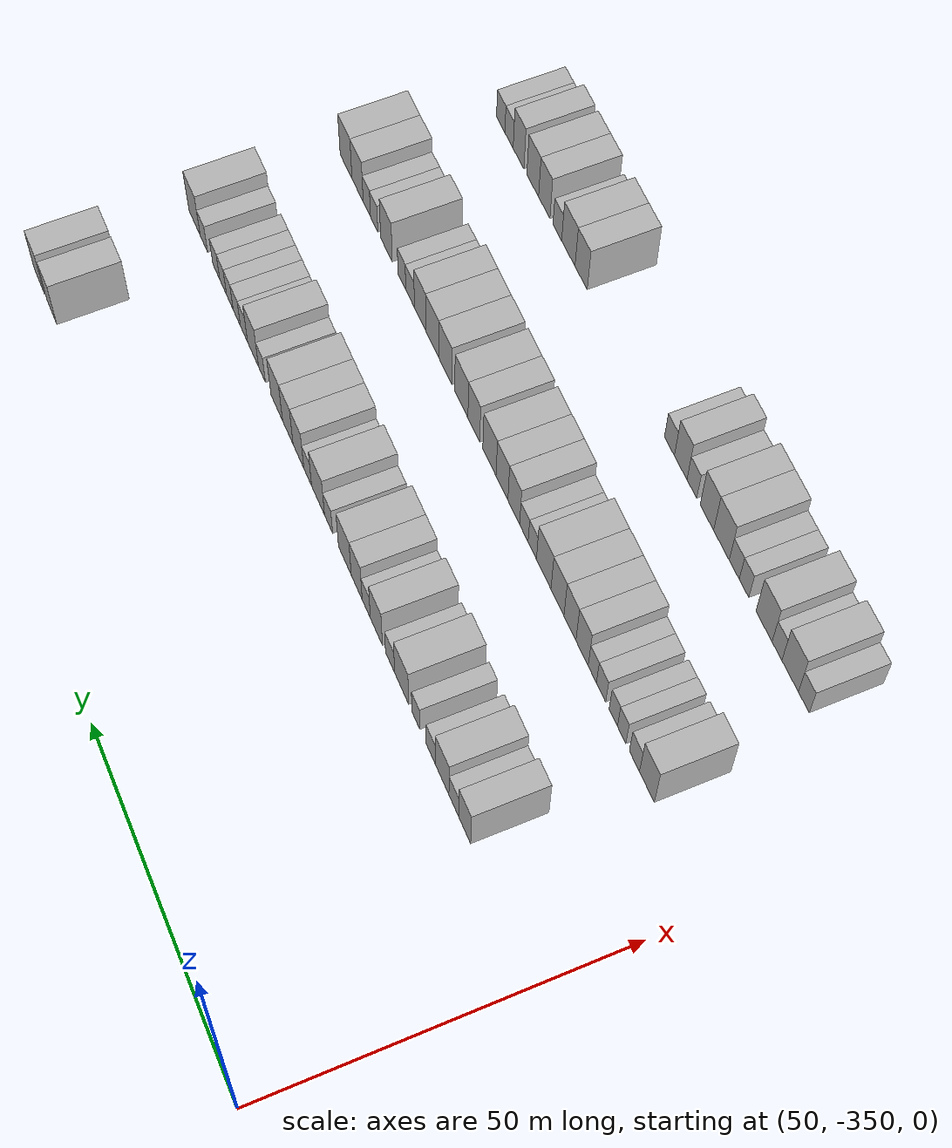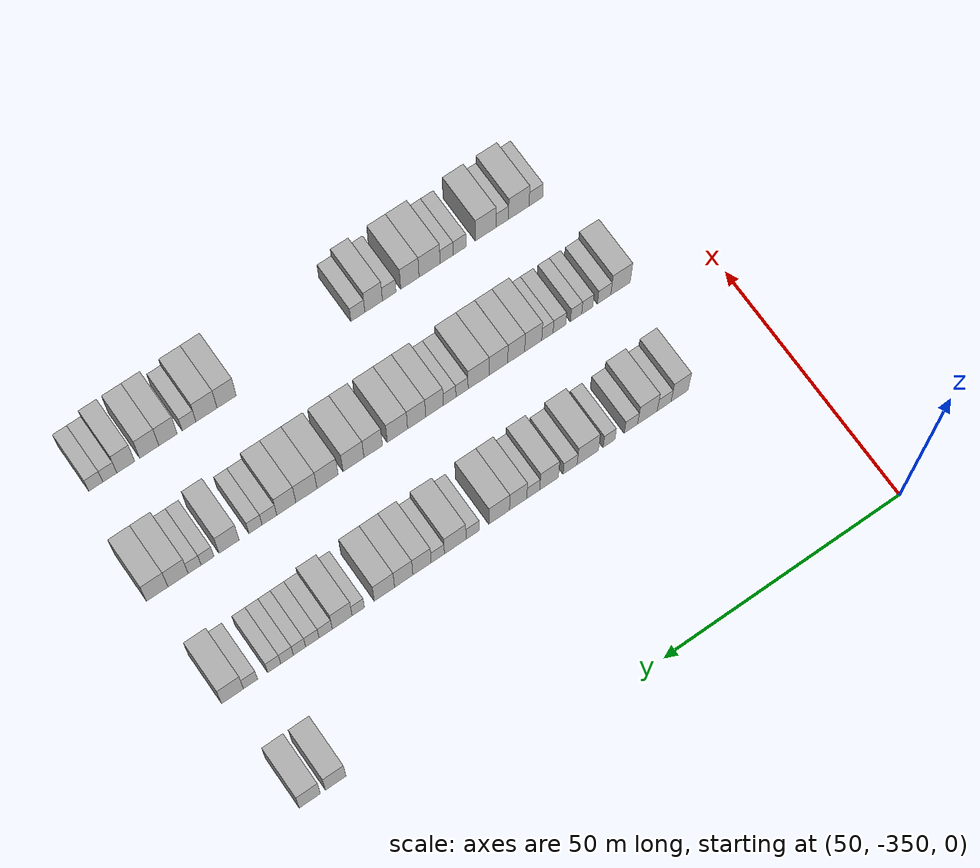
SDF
<sdf version="1.6">
 <world name="default">
  <model name="building_418">
   <static>1</static>
   <pose>69.0000 -243.1174 0 0.000000 0.000000 0.000000</pose>
   <link name="link">
    <pose>0 0 4.50 0 0 0</pose>
    <collision name="collision"><geometry><box><size>10.0000 4.0777 9.0000</size></box></geometry></collision>
    <visual name="visual">
     <cast_shadows>0</cast_shadows>
     <geometry><box><size>10.0000 4.0777 9.0000</size></box></geometry>
     <material>
      <script>
       <uri>model://HANNAS_wall/materials/scripts</uri>
       <uri>model://HANNAS_wall/materials/textures</uri>
       <name>vrc/HANNAS_wall</name>
      </script>
     </material>
    </visual>
   </link>
  </model>
  <model name="building_419">
   <static>1</static>
   <pose>69.0000 -237.9843 0 0.000000 0.000000 0.000000</pose>
   <link name="link">
    <pose>0 0 4.50 0 0 0</pose>
    <collision name="collision"><geometry><box><size>10.0000 4.1885 9.0000</size></box></geometry></collision>
    <visual name="visual">
     <cast_shadows>0</cast_shadows>
     <geometry><box><size>10.0000 4.1885 9.0000</size></box></geometry>
     <material>
      <script>
       <uri>model://HANNAS_wall/materials/scripts</uri>
       <uri>model://HANNAS_wall/materials/textures</uri>
       <name>vrc/HANNAS_wall</name>
      </script>
     </material>
    </visual>
   </link>
  </model>
  <model name="building_576">
   <static>1</static>
   <pose>91.0000 -329.6515 0 0.000000 0.000000 0.000000</pose>
   <link name="link">
    <pose>0 0 4.50 0 0 0</pose>
    <collision name="collision"><geometry><box><size>10.0000 3.6213 9.0000</size></box></geometry></collision>
    <visual name="visual">
     <cast_shadows>0</cast_shadows>
     <geometry><box><size>10.0000 3.6213 9.0000</size></box></geometry>
     <material>
      <script>
       <uri>model://HANNAS_wall/materials/scripts</uri>
       <uri>model://HANNAS_wall/materials/textures</uri>
       <name>vrc/HANNAS_wall</name>
      </script>
     </material>
    </visual>
   </link>
  </model>
  <model name="building_577">
   <static>1</static>
   <pose>91.0000 -326.3571 0 0.000000 0.000000 0.000000</pose>
   <link name="link">
    <pose>0 0 3.00 0 0 0</pose>
    <collision name="collision"><geometry><box><size>10.0000 2.9674 6.0000</size></box></geometry></collision>
    <visual name="visual">
     <cast_shadows>0</cast_shadows>
     <geometry><box><size>10.0000 2.9674 6.0000</size></box></geometry>
     <material>
      <script>
       <uri>model://HANNAS_wall/materials/scripts</uri>
       <uri>model://HANNAS_wall/materials/textures</uri>
       <name>vrc/HANNAS_wall</name>
      </script>
     </material>
    </visual>
   </link>
  </model>
  <model name="building_578">
   <static>1</static>
   <pose>91.0000 -322.7849 0 0.000000 0.000000 0.000000</pose>
   <link name="link">
    <pose>0 0 4.50 0 0 0</pose>
    <collision name="collision"><geometry><box><size>10.0000 4.1769 9.0000</size></box></geometry></collision>
    <visual name="visual">
     <cast_shadows>0</cast_shadows>
     <geometry><box><size>10.0000 4.1769 9.0000</size></box></geometry>
     <material>
      <script>
       <uri>model://HANNAS_wall/materials/scripts</uri>
       <uri>model://HANNAS_wall/materials/textures</uri>
       <name>vrc/HANNAS_wall</name>
      </script>
     </material>
    </visual>
   </link>
  </model>
  <model name="building_579">
   <static>1</static>
   <pose>91.0000 -319.2831 0 0.000000 0.000000 0.000000</pose>
   <link name="link">
    <pose>0 0 3.00 0 0 0</pose>
    <collision name="collision"><geometry><box><size>10.0000 2.8267 6.0000</size></box></geometry></collision>
    <visual name="visual">
     <cast_shadows>0</cast_shadows>
     <geometry><box><size>10.0000 2.8267 6.0000</size></box></geometry>
     <material>
      <script>
       <uri>model://HANNAS_wall/materials/scripts</uri>
       <uri>model://HANNAS_wall/materials/textures</uri>
       <name>vrc/HANNAS_wall</name>
      </script>
     </material>
    </visual>
   </link>
  </model>
  <model name="building_580">
   <static>1</static>
   <pose>91.0000 -314.6168 0 0.000000 0.000000 0.000000</pose>
   <link name="link">
    <pose>0 0 3.00 0 0 0</pose>
    <collision name="collision"><geometry><box><size>10.0000 2.5059 6.0000</size></box></geometry></collision>
    <visual name="visual">
     <cast_shadows>0</cast_shadows>
     <geometry><box><size>10.0000 2.5059 6.0000</size></box></geometry>
     <material>
      <script>
       <uri>model://HANNAS_wall/materials/scripts</uri>
       <uri>model://HANNAS_wall/materials/textures</uri>
       <name>vrc/HANNAS_wall</name>
      </script>
     </material>
    </visual>
   </link>
  </model>
  <model name="building_581">
   <static>1</static>
   <pose>91.0000 -310.1187 0 0.000000 0.000000 0.000000</pose>
   <link name="link">
    <pose>0 0 4.50 0 0 0</pose>
    <collision name="collision"><geometry><box><size>10.0000 4.4902 9.0000</size></box></geometry></collision>
    <visual name="visual">
     <cast_shadows>0</cast_shadows>
     <geometry><box><size>10.0000 4.4902 9.0000</size></box></geometry>
     <material>
      <script>
       <uri>model://HANNAS_wall/materials/scripts</uri>
       <uri>model://HANNAS_wall/materials/textures</uri>
       <name>vrc/HANNAS_wall</name>
      </script>
     </material>
    </visual>
   </link>
  </model>
  <model name="building_582">
   <static>1</static>
   <pose>91.0000 -306.4011 0 0.000000 0.000000 0.000000</pose>
   <link name="link">
    <pose>0 0 3.00 0 0 0</pose>
    <collision name="collision"><geometry><box><size>10.0000 2.9450 6.0000</size></box></geometry></collision>
    <visual name="visual">
     <cast_shadows>0</cast_shadows>
     <geometry><box><size>10.0000 2.9450 6.0000</size></box></geometry>
     <material>
      <script>
       <uri>model://HANNAS_wall/materials/scripts</uri>
       <uri>model://HANNAS_wall/materials/textures</uri>
       <name>vrc/HANNAS_wall</name>
      </script>
     </material>
    </visual>
   </link>
  </model>
  <model name="building_583">
   <static>1</static>
   <pose>91.0000 -301.9634 0 0.000000 0.000000 0.000000</pose>
   <link name="link">
    <pose>0 0 4.50 0 0 0</pose>
    <collision name="collision"><geometry><box><size>10.0000 3.9306 9.0000</size></box></geometry></collision>
    <visual name="visual">
     <cast_shadows>0</cast_shadows>
     <geometry><box><size>10.0000 3.9306 9.0000</size></box></geometry>
     <material>
      <script>
       <uri>model://HANNAS_wall/materials/scripts</uri>
       <uri>model://HANNAS_wall/materials/textures</uri>
       <name>vrc/HANNAS_wall</name>
      </script>
     </material>
    </visual>
   </link>
  </model>
  <model name="building_584">
   <static>1</static>
   <pose>91.0000 -298.6468 0 0.000000 0.000000 0.000000</pose>
   <link name="link">
    <pose>0 0 3.00 0 0 0</pose>
    <collision name="collision"><geometry><box><size>10.0000 2.7025 6.0000</size></box></geometry></collision>
    <visual name="visual">
     <cast_shadows>0</cast_shadows>
     <geometry><box><size>10.0000 2.7025 6.0000</size></box></geometry>
     <material>
      <script>
       <uri>model://HANNAS_wall/materials/scripts</uri>
       <uri>model://HANNAS_wall/materials/textures</uri>
       <name>vrc/HANNAS_wall</name>
      </script>
     </material>
    </visual>
   </link>
  </model>
  <model name="building_585">
   <static>1</static>
   <pose>91.0000 -295.4903 0 0.000000 0.000000 0.000000</pose>
   <link name="link">
    <pose>0 0 4.50 0 0 0</pose>
    <collision name="collision"><geometry><box><size>10.0000 3.6104 9.0000</size></box></geometry></collision>
    <visual name="visual">
     <cast_shadows>0</cast_shadows>
     <geometry><box><size>10.0000 3.6104 9.0000</size></box></geometry>
     <material>
      <script>
       <uri>model://HANNAS_wall/materials/scripts</uri>
       <uri>model://HANNAS_wall/materials/textures</uri>
       <name>vrc/HANNAS_wall</name>
      </script>
     </material>
    </visual>
   </link>
  </model>
  <model name="building_586">
   <static>1</static>
   <pose>91.0000 -291.5379 0 0.000000 0.000000 0.000000</pose>
   <link name="link">
    <pose>0 0 4.50 0 0 0</pose>
    <collision name="collision"><geometry><box><size>10.0000 4.2945 9.0000</size></box></geometry></collision>
    <visual name="visual">
     <cast_shadows>0</cast_shadows>
     <geometry><box><size>10.0000 4.2945 9.0000</size></box></geometry>
     <material>
      <script>
       <uri>model://HANNAS_wall/materials/scripts</uri>
       <uri>model://HANNAS_wall/materials/textures</uri>
       <name>vrc/HANNAS_wall</name>
      </script>
     </material>
    </visual>
   </link>
  </model>
  <model name="building_587">
   <static>1</static>
   <pose>91.0000 -286.0147 0 0.000000 0.000000 0.000000</pose>
   <link name="link">
    <pose>0 0 3.00 0 0 0</pose>
    <collision name="collision"><geometry><box><size>10.0000 2.7519 6.0000</size></box></geometry></collision>
    <visual name="visual">
     <cast_shadows>0</cast_shadows>
     <geometry><box><size>10.0000 2.7519 6.0000</size></box></geometry>
     <material>
      <script>
       <uri>model://HANNAS_wall/materials/scripts</uri>
       <uri>model://HANNAS_wall/materials/textures</uri>
       <name>vrc/HANNAS_wall</name>
      </script>
     </material>
    </visual>
   </link>
  </model>
  <model name="building_588">
   <static>1</static>
   <pose>91.0000 -282.4150 0 0.000000 0.000000 0.000000</pose>
   <link name="link">
    <pose>0 0 4.50 0 0 0</pose>
    <collision name="collision"><geometry><box><size>10.0000 4.4475 9.0000</size></box></geometry></collision>
    <visual name="visual">
     <cast_shadows>0</cast_shadows>
     <geometry><box><size>10.0000 4.4475 9.0000</size></box></geometry>
     <material>
      <script>
       <uri>model://HANNAS_wall/materials/scripts</uri>
       <uri>model://HANNAS_wall/materials/textures</uri>
       <name>vrc/HANNAS_wall</name>
      </script>
     </material>
    </visual>
   </link>
  </model>
  <model name="building_589">
   <static>1</static>
   <pose>91.0000 -278.8272 0 0.000000 0.000000 0.000000</pose>
   <link name="link">
    <pose>0 0 3.00 0 0 0</pose>
    <collision name="collision"><geometry><box><size>10.0000 2.7281 6.0000</size></box></geometry></collision>
    <visual name="visual">
     <cast_shadows>0</cast_shadows>
     <geometry><box><size>10.0000 2.7281 6.0000</size></box></geometry>
     <material>
      <script>
       <uri>model://HANNAS_wall/materials/scripts</uri>
       <uri>model://HANNAS_wall/materials/textures</uri>
       <name>vrc/HANNAS_wall</name>
      </script>
     </material>
    </visual>
   </link>
  </model>
  <model name="building_590">
   <static>1</static>
   <pose>91.0000 -275.5857 0 0.000000 0.000000 0.000000</pose>
   <link name="link">
    <pose>0 0 4.50 0 0 0</pose>
    <collision name="collision"><geometry><box><size>10.0000 3.7551 9.0000</size></box></geometry></collision>
    <visual name="visual">
     <cast_shadows>0</cast_shadows>
     <geometry><box><size>10.0000 3.7551 9.0000</size></box></geometry>
     <material>
      <script>
       <uri>model://HANNAS_wall/materials/scripts</uri>
       <uri>model://HANNAS_wall/materials/textures</uri>
       <name>vrc/HANNAS_wall</name>
      </script>
     </material>
    </visual>
   </link>
  </model>
  <model name="building_591">
   <static>1</static>
   <pose>91.0000 -271.8321 0 0.000000 0.000000 0.000000</pose>
   <link name="link">
    <pose>0 0 4.50 0 0 0</pose>
    <collision name="collision"><geometry><box><size>10.0000 3.7521 9.0000</size></box></geometry></collision>
    <visual name="visual">
     <cast_shadows>0</cast_shadows>
     <geometry><box><size>10.0000 3.7521 9.0000</size></box></geometry>
     <material>
      <script>
       <uri>model://HANNAS_wall/materials/scripts</uri>
       <uri>model://HANNAS_wall/materials/textures</uri>
       <name>vrc/HANNAS_wall</name>
      </script>
     </material>
    </visual>
   </link>
  </model>
  <model name="building_592">
   <static>1</static>
   <pose>91.0000 -267.8770 0 0.000000 0.000000 0.000000</pose>
   <link name="link">
    <pose>0 0 4.50 0 0 0</pose>
    <collision name="collision"><geometry><box><size>10.0000 4.1580 9.0000</size></box></geometry></collision>
    <visual name="visual">
     <cast_shadows>0</cast_shadows>
     <geometry><box><size>10.0000 4.1580 9.0000</size></box></geometry>
     <material>
      <script>
       <uri>model://HANNAS_wall/materials/scripts</uri>
       <uri>model://HANNAS_wall/materials/textures</uri>
       <name>vrc/HANNAS_wall</name>
      </script>
     </material>
    </visual>
   </link>
  </model>
  <model name="building_593">
   <static>1</static>
   <pose>91.0000 -262.5441 0 0.000000 0.000000 0.000000</pose>
   <link name="link">
    <pose>0 0 3.00 0 0 0</pose>
    <collision name="collision"><geometry><box><size>10.0000 2.5079 6.0000</size></box></geometry></collision>
    <visual name="visual">
     <cast_shadows>0</cast_shadows>
     <geometry><box><size>10.0000 2.5079 6.0000</size></box></geometry>
     <material>
      <script>
       <uri>model://HANNAS_wall/materials/scripts</uri>
       <uri>model://HANNAS_wall/materials/textures</uri>
       <name>vrc/HANNAS_wall</name>
      </script>
     </material>
    </visual>
   </link>
  </model>
  <model name="building_594">
   <static>1</static>
   <pose>91.0000 -259.2840 0 0.000000 0.000000 0.000000</pose>
   <link name="link">
    <pose>0 0 4.50 0 0 0</pose>
    <collision name="collision"><geometry><box><size>10.0000 4.0123 9.0000</size></box></geometry></collision>
    <visual name="visual">
     <cast_shadows>0</cast_shadows>
     <geometry><box><size>10.0000 4.0123 9.0000</size></box></geometry>
     <material>
      <script>
       <uri>model://HANNAS_wall/materials/scripts</uri>
       <uri>model://HANNAS_wall/materials/textures</uri>
       <name>vrc/HANNAS_wall</name>
      </script>
     </material>
    </visual>
   </link>
  </model>
  <model name="building_595">
   <static>1</static>
   <pose>91.0000 -255.9419 0 0.000000 0.000000 0.000000</pose>
   <link name="link">
    <pose>0 0 3.00 0 0 0</pose>
    <collision name="collision"><geometry><box><size>10.0000 2.6717 6.0000</size></box></geometry></collision>
    <visual name="visual">
     <cast_shadows>0</cast_shadows>
     <geometry><box><size>10.0000 2.6717 6.0000</size></box></geometry>
     <material>
      <script>
       <uri>model://HANNAS_wall/materials/scripts</uri>
       <uri>model://HANNAS_wall/materials/textures</uri>
       <name>vrc/HANNAS_wall</name>
      </script>
     </material>
    </visual>
   </link>
  </model>
  <model name="building_596">
   <static>1</static>
   <pose>91.0000 -253.2469 0 0.000000 0.000000 0.000000</pose>
   <link name="link">
    <pose>0 0 3.00 0 0 0</pose>
    <collision name="collision"><geometry><box><size>10.0000 2.7183 6.0000</size></box></geometry></collision>
    <visual name="visual">
     <cast_shadows>0</cast_shadows>
     <geometry><box><size>10.0000 2.7183 6.0000</size></box></geometry>
     <material>
      <script>
       <uri>model://HANNAS_wall/materials/scripts</uri>
       <uri>model://HANNAS_wall/materials/textures</uri>
       <name>vrc/HANNAS_wall</name>
      </script>
     </material>
    </visual>
   </link>
  </model>
  <model name="building_597">
   <static>1</static>
   <pose>91.0000 -250.6564 0 0.000000 0.000000 0.000000</pose>
   <link name="link">
    <pose>0 0 3.00 0 0 0</pose>
    <collision name="collision"><geometry><box><size>10.0000 2.4627 6.0000</size></box></geometry></collision>
    <visual name="visual">
     <cast_shadows>0</cast_shadows>
     <geometry><box><size>10.0000 2.4627 6.0000</size></box></geometry>
     <material>
      <script>
       <uri>model://HANNAS_wall/materials/scripts</uri>
       <uri>model://HANNAS_wall/materials/textures</uri>
       <name>vrc/HANNAS_wall</name>
      </script>
     </material>
    </visual>
   </link>
  </model>
  <model name="building_598">
   <static>1</static>
   <pose>91.0000 -248.1455 0 0.000000 0.000000 0.000000</pose>
   <link name="link">
    <pose>0 0 3.00 0 0 0</pose>
    <collision name="collision"><geometry><box><size>10.0000 2.5593 6.0000</size></box></geometry></collision>
    <visual name="visual">
     <cast_shadows>0</cast_shadows>
     <geometry><box><size>10.0000 2.5593 6.0000</size></box></geometry>
     <material>
      <script>
       <uri>model://HANNAS_wall/materials/scripts</uri>
       <uri>model://HANNAS_wall/materials/textures</uri>
       <name>vrc/HANNAS_wall</name>
      </script>
     </material>
    </visual>
   </link>
  </model>
  <model name="building_599">
   <static>1</static>
   <pose>91.0000 -245.5492 0 0.000000 0.000000 0.000000</pose>
   <link name="link">
    <pose>0 0 3.00 0 0 0</pose>
    <collision name="collision"><geometry><box><size>10.0000 2.6333 6.0000</size></box></geometry></collision>
    <visual name="visual">
     <cast_shadows>0</cast_shadows>
     <geometry><box><size>10.0000 2.6333 6.0000</size></box></geometry>
     <material>
      <script>
       <uri>model://HANNAS_wall/materials/scripts</uri>
       <uri>model://HANNAS_wall/materials/textures</uri>
       <name>vrc/HANNAS_wall</name>
      </script>
     </material>
    </visual>
   </link>
  </model>
  <model name="building_600">
   <static>1</static>
   <pose>91.0000 -240.8140 0 0.000000 0.000000 0.000000</pose>
   <link name="link">
    <pose>0 0 3.00 0 0 0</pose>
    <collision name="collision"><geometry><box><size>10.0000 2.8371 6.0000</size></box></geometry></collision>
    <visual name="visual">
     <cast_shadows>0</cast_shadows>
     <geometry><box><size>10.0000 2.8371 6.0000</size></box></geometry>
     <material>
      <script>
       <uri>model://HANNAS_wall/materials/scripts</uri>
       <uri>model://HANNAS_wall/materials/textures</uri>
       <name>vrc/HANNAS_wall</name>
      </script>
     </material>
    </visual>
   </link>
  </model>
  <model name="building_601">
   <static>1</static>
   <pose>91.0000 -237.2068 0 0.000000 0.000000 0.000000</pose>
   <link name="link">
    <pose>0 0 4.50 0 0 0</pose>
    <collision name="collision"><geometry><box><size>10.0000 4.3772 9.0000</size></box></geometry></collision>
    <visual name="visual">
     <cast_shadows>0</cast_shadows>
     <geometry><box><size>10.0000 4.3772 9.0000</size></box></geometry>
     <material>
      <script>
       <uri>model://HANNAS_wall/materials/scripts</uri>
       <uri>model://HANNAS_wall/materials/textures</uri>
       <name>vrc/HANNAS_wall</name>
      </script>
     </material>
    </visual>
   </link>
  </model>
  <model name="building_762">
   <static>1</static>
   <pose>113.0000 -332.9879 0 0.000000 0.000000 0.000000</pose>
   <link name="link">
    <pose>0 0 4.50 0 0 0</pose>
    <collision name="collision"><geometry><box><size>10.0000 4.1972 9.0000</size></box></geometry></collision>
    <visual name="visual">
     <cast_shadows>0</cast_shadows>
     <geometry><box><size>10.0000 4.1972 9.0000</size></box></geometry>
     <material>
      <script>
       <uri>model://HANNAS_wall/materials/scripts</uri>
       <uri>model://HANNAS_wall/materials/textures</uri>
       <name>vrc/HANNAS_wall</name>
      </script>
     </material>
    </visual>
   </link>
  </model>
  <model name="building_763">
   <static>1</static>
   <pose>113.0000 -329.4552 0 0.000000 0.000000 0.000000</pose>
   <link name="link">
    <pose>0 0 3.00 0 0 0</pose>
    <collision name="collision"><geometry><box><size>10.0000 2.8682 6.0000</size></box></geometry></collision>
    <visual name="visual">
     <cast_shadows>0</cast_shadows>
     <geometry><box><size>10.0000 2.8682 6.0000</size></box></geometry>
     <material>
      <script>
       <uri>model://HANNAS_wall/materials/scripts</uri>
       <uri>model://HANNAS_wall/materials/textures</uri>
       <name>vrc/HANNAS_wall</name>
      </script>
     </material>
    </visual>
   </link>
  </model>
  <model name="building_764">
   <static>1</static>
   <pose>113.0000 -325.8175 0 0.000000 0.000000 0.000000</pose>
   <link name="link">
    <pose>0 0 3.00 0 0 0</pose>
    <collision name="collision"><geometry><box><size>10.0000 2.4073 6.0000</size></box></geometry></collision>
    <visual name="visual">
     <cast_shadows>0</cast_shadows>
     <geometry><box><size>10.0000 2.4073 6.0000</size></box></geometry>
     <material>
      <script>
       <uri>model://HANNAS_wall/materials/scripts</uri>
       <uri>model://HANNAS_wall/materials/textures</uri>
       <name>vrc/HANNAS_wall</name>
      </script>
     </material>
    </visual>
   </link>
  </model>
  <model name="building_765">
   <static>1</static>
   <pose>113.0000 -323.4071 0 0.000000 0.000000 0.000000</pose>
   <link name="link">
    <pose>0 0 3.00 0 0 0</pose>
    <collision name="collision"><geometry><box><size>10.0000 2.4134 6.0000</size></box></geometry></collision>
    <visual name="visual">
     <cast_shadows>0</cast_shadows>
     <geometry><box><size>10.0000 2.4134 6.0000</size></box></geometry>
     <material>
      <script>
       <uri>model://HANNAS_wall/materials/scripts</uri>
       <uri>model://HANNAS_wall/materials/textures</uri>
       <name>vrc/HANNAS_wall</name>
      </script>
     </material>
    </visual>
   </link>
  </model>
  <model name="building_766">
   <static>1</static>
   <pose>113.0000 -319.8445 0 0.000000 0.000000 0.000000</pose>
   <link name="link">
    <pose>0 0 3.00 0 0 0</pose>
    <collision name="collision"><geometry><box><size>10.0000 2.7119 6.0000</size></box></geometry></collision>
    <visual name="visual">
     <cast_shadows>0</cast_shadows>
     <geometry><box><size>10.0000 2.7119 6.0000</size></box></geometry>
     <material>
      <script>
       <uri>model://HANNAS_wall/materials/scripts</uri>
       <uri>model://HANNAS_wall/materials/textures</uri>
       <name>vrc/HANNAS_wall</name>
      </script>
     </material>
    </visual>
   </link>
  </model>
  <model name="building_767">
   <static>1</static>
   <pose>113.0000 -317.2727 0 0.000000 0.000000 0.000000</pose>
   <link name="link">
    <pose>0 0 3.00 0 0 0</pose>
    <collision name="collision"><geometry><box><size>10.0000 2.4318 6.0000</size></box></geometry></collision>
    <visual name="visual">
     <cast_shadows>0</cast_shadows>
     <geometry><box><size>10.0000 2.4318 6.0000</size></box></geometry>
     <material>
      <script>
       <uri>model://HANNAS_wall/materials/scripts</uri>
       <uri>model://HANNAS_wall/materials/textures</uri>
       <name>vrc/HANNAS_wall</name>
      </script>
     </material>
    </visual>
   </link>
  </model>
  <model name="building_768">
   <static>1</static>
   <pose>113.0000 -314.2405 0 0.000000 0.000000 0.000000</pose>
   <link name="link">
    <pose>0 0 4.50 0 0 0</pose>
    <collision name="collision"><geometry><box><size>10.0000 3.6325 9.0000</size></box></geometry></collision>
    <visual name="visual">
     <cast_shadows>0</cast_shadows>
     <geometry><box><size>10.0000 3.6325 9.0000</size></box></geometry>
     <material>
      <script>
       <uri>model://HANNAS_wall/materials/scripts</uri>
       <uri>model://HANNAS_wall/materials/textures</uri>
       <name>vrc/HANNAS_wall</name>
      </script>
     </material>
    </visual>
   </link>
  </model>
  <model name="building_769">
   <static>1</static>
   <pose>113.0000 -310.6214 0 0.000000 0.000000 0.000000</pose>
   <link name="link">
    <pose>0 0 4.50 0 0 0</pose>
    <collision name="collision"><geometry><box><size>10.0000 3.6058 9.0000</size></box></geometry></collision>
    <visual name="visual">
     <cast_shadows>0</cast_shadows>
     <geometry><box><size>10.0000 3.6058 9.0000</size></box></geometry>
     <material>
      <script>
       <uri>model://HANNAS_wall/materials/scripts</uri>
       <uri>model://HANNAS_wall/materials/textures</uri>
       <name>vrc/HANNAS_wall</name>
      </script>
     </material>
    </visual>
   </link>
  </model>
  <model name="building_770">
   <static>1</static>
   <pose>113.0000 -306.8522 0 0.000000 0.000000 0.000000</pose>
   <link name="link">
    <pose>0 0 4.50 0 0 0</pose>
    <collision name="collision"><geometry><box><size>10.0000 3.9325 9.0000</size></box></geometry></collision>
    <visual name="visual">
     <cast_shadows>0</cast_shadows>
     <geometry><box><size>10.0000 3.9325 9.0000</size></box></geometry>
     <material>
      <script>
       <uri>model://HANNAS_wall/materials/scripts</uri>
       <uri>model://HANNAS_wall/materials/textures</uri>
       <name>vrc/HANNAS_wall</name>
      </script>
     </material>
    </visual>
   </link>
  </model>
  <model name="building_771">
   <static>1</static>
   <pose>113.0000 -302.6609 0 0.000000 0.000000 0.000000</pose>
   <link name="link">
    <pose>0 0 4.50 0 0 0</pose>
    <collision name="collision"><geometry><box><size>10.0000 4.4500 9.0000</size></box></geometry></collision>
    <visual name="visual">
     <cast_shadows>0</cast_shadows>
     <geometry><box><size>10.0000 4.4500 9.0000</size></box></geometry>
     <material>
      <script>
       <uri>model://HANNAS_wall/materials/scripts</uri>
       <uri>model://HANNAS_wall/materials/textures</uri>
       <name>vrc/HANNAS_wall</name>
      </script>
     </material>
    </visual>
   </link>
  </model>
  <model name="building_772">
   <static>1</static>
   <pose>113.0000 -299.1477 0 0.000000 0.000000 0.000000</pose>
   <link name="link">
    <pose>0 0 3.00 0 0 0</pose>
    <collision name="collision"><geometry><box><size>10.0000 2.5765 6.0000</size></box></geometry></collision>
    <visual name="visual">
     <cast_shadows>0</cast_shadows>
     <geometry><box><size>10.0000 2.5765 6.0000</size></box></geometry>
     <material>
      <script>
       <uri>model://HANNAS_wall/materials/scripts</uri>
       <uri>model://HANNAS_wall/materials/textures</uri>
       <name>vrc/HANNAS_wall</name>
      </script>
     </material>
    </visual>
   </link>
  </model>
  <model name="building_773">
   <static>1</static>
   <pose>113.0000 -296.5322 0 0.000000 0.000000 0.000000</pose>
   <link name="link">
    <pose>0 0 3.00 0 0 0</pose>
    <collision name="collision"><geometry><box><size>10.0000 2.6546 6.0000</size></box></geometry></collision>
    <visual name="visual">
     <cast_shadows>0</cast_shadows>
     <geometry><box><size>10.0000 2.6546 6.0000</size></box></geometry>
     <material>
      <script>
       <uri>model://HANNAS_wall/materials/scripts</uri>
       <uri>model://HANNAS_wall/materials/textures</uri>
       <name>vrc/HANNAS_wall</name>
      </script>
     </material>
    </visual>
   </link>
  </model>
  <model name="building_774">
   <static>1</static>
   <pose>113.0000 -293.3599 0 0.000000 0.000000 0.000000</pose>
   <link name="link">
    <pose>0 0 4.50 0 0 0</pose>
    <collision name="collision"><geometry><box><size>10.0000 3.6901 9.0000</size></box></geometry></collision>
    <visual name="visual">
     <cast_shadows>0</cast_shadows>
     <geometry><box><size>10.0000 3.6901 9.0000</size></box></geometry>
     <material>
      <script>
       <uri>model://HANNAS_wall/materials/scripts</uri>
       <uri>model://HANNAS_wall/materials/textures</uri>
       <name>vrc/HANNAS_wall</name>
      </script>
     </material>
    </visual>
   </link>
  </model>
  <model name="building_775">
   <static>1</static>
   <pose>113.0000 -289.6259 0 0.000000 0.000000 0.000000</pose>
   <link name="link">
    <pose>0 0 4.50 0 0 0</pose>
    <collision name="collision"><geometry><box><size>10.0000 3.7778 9.0000</size></box></geometry></collision>
    <visual name="visual">
     <cast_shadows>0</cast_shadows>
     <geometry><box><size>10.0000 3.7778 9.0000</size></box></geometry>
     <material>
      <script>
       <uri>model://HANNAS_wall/materials/scripts</uri>
       <uri>model://HANNAS_wall/materials/textures</uri>
       <name>vrc/HANNAS_wall</name>
      </script>
     </material>
    </visual>
   </link>
  </model>
  <model name="building_776">
   <static>1</static>
   <pose>113.0000 -285.6126 0 0.000000 0.000000 0.000000</pose>
   <link name="link">
    <pose>0 0 4.50 0 0 0</pose>
    <collision name="collision"><geometry><box><size>10.0000 4.2488 9.0000</size></box></geometry></collision>
    <visual name="visual">
     <cast_shadows>0</cast_shadows>
     <geometry><box><size>10.0000 4.2488 9.0000</size></box></geometry>
     <material>
      <script>
       <uri>model://HANNAS_wall/materials/scripts</uri>
       <uri>model://HANNAS_wall/materials/textures</uri>
       <name>vrc/HANNAS_wall</name>
      </script>
     </material>
    </visual>
   </link>
  </model>
  <model name="building_777">
   <static>1</static>
   <pose>113.0000 -280.5696 0 0.000000 0.000000 0.000000</pose>
   <link name="link">
    <pose>0 0 4.50 0 0 0</pose>
    <collision name="collision"><geometry><box><size>10.0000 3.8373 9.0000</size></box></geometry></collision>
    <visual name="visual">
     <cast_shadows>0</cast_shadows>
     <geometry><box><size>10.0000 3.8373 9.0000</size></box></geometry>
     <material>
      <script>
       <uri>model://HANNAS_wall/materials/scripts</uri>
       <uri>model://HANNAS_wall/materials/textures</uri>
       <name>vrc/HANNAS_wall</name>
      </script>
     </material>
    </visual>
   </link>
  </model>
  <model name="building_778">
   <static>1</static>
   <pose>113.0000 -276.4842 0 0.000000 0.000000 0.000000</pose>
   <link name="link">
    <pose>0 0 4.50 0 0 0</pose>
    <collision name="collision"><geometry><box><size>10.0000 4.3334 9.0000</size></box></geometry></collision>
    <visual name="visual">
     <cast_shadows>0</cast_shadows>
     <geometry><box><size>10.0000 4.3334 9.0000</size></box></geometry>
     <material>
      <script>
       <uri>model://HANNAS_wall/materials/scripts</uri>
       <uri>model://HANNAS_wall/materials/textures</uri>
       <name>vrc/HANNAS_wall</name>
      </script>
     </material>
    </visual>
   </link>
  </model>
  <model name="building_779">
   <static>1</static>
   <pose>113.0000 -271.1291 0 0.000000 0.000000 0.000000</pose>
   <link name="link">
    <pose>0 0 4.50 0 0 0</pose>
    <collision name="collision"><geometry><box><size>10.0000 4.3768 9.0000</size></box></geometry></collision>
    <visual name="visual">
     <cast_shadows>0</cast_shadows>
     <geometry><box><size>10.0000 4.3768 9.0000</size></box></geometry>
     <material>
      <script>
       <uri>model://HANNAS_wall/materials/scripts</uri>
       <uri>model://HANNAS_wall/materials/textures</uri>
       <name>vrc/HANNAS_wall</name>
      </script>
     </material>
    </visual>
   </link>
  </model>
  <model name="building_780">
   <static>1</static>
   <pose>113.0000 -266.7765 0 0.000000 0.000000 0.000000</pose>
   <link name="link">
    <pose>0 0 4.50 0 0 0</pose>
    <collision name="collision"><geometry><box><size>10.0000 4.3284 9.0000</size></box></geometry></collision>
    <visual name="visual">
     <cast_shadows>0</cast_shadows>
     <geometry><box><size>10.0000 4.3284 9.0000</size></box></geometry>
     <material>
      <script>
       <uri>model://HANNAS_wall/materials/scripts</uri>
       <uri>model://HANNAS_wall/materials/textures</uri>
       <name>vrc/HANNAS_wall</name>
      </script>
     </material>
    </visual>
   </link>
  </model>
  <model name="building_781">
   <static>1</static>
   <pose>113.0000 -262.6505 0 0.000000 0.000000 0.000000</pose>
   <link name="link">
    <pose>0 0 4.50 0 0 0</pose>
    <collision name="collision"><geometry><box><size>10.0000 3.9236 9.0000</size></box></geometry></collision>
    <visual name="visual">
     <cast_shadows>0</cast_shadows>
     <geometry><box><size>10.0000 3.9236 9.0000</size></box></geometry>
     <material>
      <script>
       <uri>model://HANNAS_wall/materials/scripts</uri>
       <uri>model://HANNAS_wall/materials/textures</uri>
       <name>vrc/HANNAS_wall</name>
      </script>
     </material>
    </visual>
   </link>
  </model>
  <model name="building_782">
   <static>1</static>
   <pose>113.0000 -259.1893 0 0.000000 0.000000 0.000000</pose>
   <link name="link">
    <pose>0 0 3.00 0 0 0</pose>
    <collision name="collision"><geometry><box><size>10.0000 2.9989 6.0000</size></box></geometry></collision>
    <visual name="visual">
     <cast_shadows>0</cast_shadows>
     <geometry><box><size>10.0000 2.9989 6.0000</size></box></geometry>
     <material>
      <script>
       <uri>model://HANNAS_wall/materials/scripts</uri>
       <uri>model://HANNAS_wall/materials/textures</uri>
       <name>vrc/HANNAS_wall</name>
      </script>
     </material>
    </visual>
   </link>
  </model>
  <model name="building_783">
   <static>1</static>
   <pose>113.0000 -256.3468 0 0.000000 0.000000 0.000000</pose>
   <link name="link">
    <pose>0 0 3.00 0 0 0</pose>
    <collision name="collision"><geometry><box><size>10.0000 2.6860 6.0000</size></box></geometry></collision>
    <visual name="visual">
     <cast_shadows>0</cast_shadows>
     <geometry><box><size>10.0000 2.6860 6.0000</size></box></geometry>
     <material>
      <script>
       <uri>model://HANNAS_wall/materials/scripts</uri>
       <uri>model://HANNAS_wall/materials/textures</uri>
       <name>vrc/HANNAS_wall</name>
      </script>
     </material>
    </visual>
   </link>
  </model>
  <model name="building_784">
   <static>1</static>
   <pose>113.0000 -250.9554 0 0.000000 0.000000 0.000000</pose>
   <link name="link">
    <pose>0 0 4.50 0 0 0</pose>
    <collision name="collision"><geometry><box><size>10.0000 4.0969 9.0000</size></box></geometry></collision>
    <visual name="visual">
     <cast_shadows>0</cast_shadows>
     <geometry><box><size>10.0000 4.0969 9.0000</size></box></geometry>
     <material>
      <script>
       <uri>model://HANNAS_wall/materials/scripts</uri>
       <uri>model://HANNAS_wall/materials/textures</uri>
       <name>vrc/HANNAS_wall</name>
      </script>
     </material>
    </visual>
   </link>
  </model>
  <model name="building_785">
   <static>1</static>
   <pose>113.0000 -246.6084 0 0.000000 0.000000 0.000000</pose>
   <link name="link">
    <pose>0 0 3.00 0 0 0</pose>
    <collision name="collision"><geometry><box><size>10.0000 2.5972 6.0000</size></box></geometry></collision>
    <visual name="visual">
     <cast_shadows>0</cast_shadows>
     <geometry><box><size>10.0000 2.5972 6.0000</size></box></geometry>
     <material>
      <script>
       <uri>model://HANNAS_wall/materials/scripts</uri>
       <uri>model://HANNAS_wall/materials/textures</uri>
       <name>vrc/HANNAS_wall</name>
      </script>
     </material>
    </visual>
   </link>
  </model>
  <model name="building_786">
   <static>1</static>
   <pose>113.0000 -243.9991 0 0.000000 0.000000 0.000000</pose>
   <link name="link">
    <pose>0 0 3.00 0 0 0</pose>
    <collision name="collision"><geometry><box><size>10.0000 2.6214 6.0000</size></box></geometry></collision>
    <visual name="visual">
     <cast_shadows>0</cast_shadows>
     <geometry><box><size>10.0000 2.6214 6.0000</size></box></geometry>
     <material>
      <script>
       <uri>model://HANNAS_wall/materials/scripts</uri>
       <uri>model://HANNAS_wall/materials/textures</uri>
       <name>vrc/HANNAS_wall</name>
      </script>
     </material>
    </visual>
   </link>
  </model>
  <model name="building_787">
   <static>1</static>
   <pose>113.0000 -240.6570 0 0.000000 0.000000 0.000000</pose>
   <link name="link">
    <pose>0 0 4.50 0 0 0</pose>
    <collision name="collision"><geometry><box><size>10.0000 4.0628 9.0000</size></box></geometry></collision>
    <visual name="visual">
     <cast_shadows>0</cast_shadows>
     <geometry><box><size>10.0000 4.0628 9.0000</size></box></geometry>
     <material>
      <script>
       <uri>model://HANNAS_wall/materials/scripts</uri>
       <uri>model://HANNAS_wall/materials/textures</uri>
       <name>vrc/HANNAS_wall</name>
      </script>
     </material>
    </visual>
   </link>
  </model>
  <model name="building_788">
   <static>1</static>
   <pose>113.0000 -236.4592 0 0.000000 0.000000 0.000000</pose>
   <link name="link">
    <pose>0 0 4.50 0 0 0</pose>
    <collision name="collision"><geometry><box><size>10.0000 4.3326 9.0000</size></box></geometry></collision>
    <visual name="visual">
     <cast_shadows>0</cast_shadows>
     <geometry><box><size>10.0000 4.3326 9.0000</size></box></geometry>
     <material>
      <script>
       <uri>model://HANNAS_wall/materials/scripts</uri>
       <uri>model://HANNAS_wall/materials/textures</uri>
       <name>vrc/HANNAS_wall</name>
      </script>
     </material>
    </visual>
   </link>
  </model>
  <model name="building_950">
   <static>1</static>
   <pose>135.0000 -330.4128 0 0.000000 0.000000 0.000000</pose>
   <link name="link">
    <pose>0 0 3.00 0 0 0</pose>
    <collision name="collision"><geometry><box><size>10.0000 2.9637 6.0000</size></box></geometry></collision>
    <visual name="visual">
     <cast_shadows>0</cast_shadows>
     <geometry><box><size>10.0000 2.9637 6.0000</size></box></geometry>
     <material>
      <script>
       <uri>model://HANNAS_wall/materials/scripts</uri>
       <uri>model://HANNAS_wall/materials/textures</uri>
       <name>vrc/HANNAS_wall</name>
      </script>
     </material>
    </visual>
   </link>
  </model>
  <model name="building_951">
   <static>1</static>
   <pose>135.0000 -326.6948 0 0.000000 0.000000 0.000000</pose>
   <link name="link">
    <pose>0 0 4.50 0 0 0</pose>
    <collision name="collision"><geometry><box><size>10.0000 4.4723 9.0000</size></box></geometry></collision>
    <visual name="visual">
     <cast_shadows>0</cast_shadows>
     <geometry><box><size>10.0000 4.4723 9.0000</size></box></geometry>
     <material>
      <script>
       <uri>model://HANNAS_wall/materials/scripts</uri>
       <uri>model://HANNAS_wall/materials/textures</uri>
       <name>vrc/HANNAS_wall</name>
      </script>
     </material>
    </visual>
   </link>
  </model>
  <model name="building_952">
   <static>1</static>
   <pose>135.0000 -323.1165 0 0.000000 0.000000 0.000000</pose>
   <link name="link">
    <pose>0 0 3.00 0 0 0</pose>
    <collision name="collision"><geometry><box><size>10.0000 2.6842 6.0000</size></box></geometry></collision>
    <visual name="visual">
     <cast_shadows>0</cast_shadows>
     <geometry><box><size>10.0000 2.6842 6.0000</size></box></geometry>
     <material>
      <script>
       <uri>model://HANNAS_wall/materials/scripts</uri>
       <uri>model://HANNAS_wall/materials/textures</uri>
       <name>vrc/HANNAS_wall</name>
      </script>
     </material>
    </visual>
   </link>
  </model>
  <model name="building_953">
   <static>1</static>
   <pose>135.0000 -319.5452 0 0.000000 0.000000 0.000000</pose>
   <link name="link">
    <pose>0 0 4.50 0 0 0</pose>
    <collision name="collision"><geometry><box><size>10.0000 4.4583 9.0000</size></box></geometry></collision>
    <visual name="visual">
     <cast_shadows>0</cast_shadows>
     <geometry><box><size>10.0000 4.4583 9.0000</size></box></geometry>
     <material>
      <script>
       <uri>model://HANNAS_wall/materials/scripts</uri>
       <uri>model://HANNAS_wall/materials/textures</uri>
       <name>vrc/HANNAS_wall</name>
      </script>
     </material>
    </visual>
   </link>
  </model>
  <model name="building_954">
   <static>1</static>
   <pose>135.0000 -313.9646 0 0.000000 0.000000 0.000000</pose>
   <link name="link">
    <pose>0 0 3.00 0 0 0</pose>
    <collision name="collision"><geometry><box><size>10.0000 2.7029 6.0000</size></box></geometry></collision>
    <visual name="visual">
     <cast_shadows>0</cast_shadows>
     <geometry><box><size>10.0000 2.7029 6.0000</size></box></geometry>
     <material>
      <script>
       <uri>model://HANNAS_wall/materials/scripts</uri>
       <uri>model://HANNAS_wall/materials/textures</uri>
       <name>vrc/HANNAS_wall</name>
      </script>
     </material>
    </visual>
   </link>
  </model>
  <model name="building_955">
   <static>1</static>
   <pose>135.0000 -311.1885 0 0.000000 0.000000 0.000000</pose>
   <link name="link">
    <pose>0 0 3.00 0 0 0</pose>
    <collision name="collision"><geometry><box><size>10.0000 2.8495 6.0000</size></box></geometry></collision>
    <visual name="visual">
     <cast_shadows>0</cast_shadows>
     <geometry><box><size>10.0000 2.8495 6.0000</size></box></geometry>
     <material>
      <script>
       <uri>model://HANNAS_wall/materials/scripts</uri>
       <uri>model://HANNAS_wall/materials/textures</uri>
       <name>vrc/HANNAS_wall</name>
      </script>
     </material>
    </visual>
   </link>
  </model>
  <model name="building_956">
   <static>1</static>
   <pose>135.0000 -307.5252 0 0.000000 0.000000 0.000000</pose>
   <link name="link">
    <pose>0 0 4.50 0 0 0</pose>
    <collision name="collision"><geometry><box><size>10.0000 4.4771 9.0000</size></box></geometry></collision>
    <visual name="visual">
     <cast_shadows>0</cast_shadows>
     <geometry><box><size>10.0000 4.4771 9.0000</size></box></geometry>
     <material>
      <script>
       <uri>model://HANNAS_wall/materials/scripts</uri>
       <uri>model://HANNAS_wall/materials/textures</uri>
       <name>vrc/HANNAS_wall</name>
      </script>
     </material>
    </visual>
   </link>
  </model>
  <model name="building_957">
   <static>1</static>
   <pose>135.0000 -303.3315 0 0.000000 0.000000 0.000000</pose>
   <link name="link">
    <pose>0 0 4.50 0 0 0</pose>
    <collision name="collision"><geometry><box><size>10.0000 3.9102 9.0000</size></box></geometry></collision>
    <visual name="visual">
     <cast_shadows>0</cast_shadows>
     <geometry><box><size>10.0000 3.9102 9.0000</size></box></geometry>
     <material>
      <script>
       <uri>model://HANNAS_wall/materials/scripts</uri>
       <uri>model://HANNAS_wall/materials/textures</uri>
       <name>vrc/HANNAS_wall</name>
      </script>
     </material>
    </visual>
   </link>
  </model>
  <model name="building_958">
   <static>1</static>
   <pose>135.0000 -298.9425 0 0.000000 0.000000 0.000000</pose>
   <link name="link">
    <pose>0 0 3.00 0 0 0</pose>
    <collision name="collision"><geometry><box><size>10.0000 2.8677 6.0000</size></box></geometry></collision>
    <visual name="visual">
     <cast_shadows>0</cast_shadows>
     <geometry><box><size>10.0000 2.8677 6.0000</size></box></geometry>
     <material>
      <script>
       <uri>model://HANNAS_wall/materials/scripts</uri>
       <uri>model://HANNAS_wall/materials/textures</uri>
       <name>vrc/HANNAS_wall</name>
      </script>
     </material>
    </visual>
   </link>
  </model>
  <model name="building_959">
   <static>1</static>
   <pose>135.0000 -295.6496 0 0.000000 0.000000 0.000000</pose>
   <link name="link">
    <pose>0 0 4.50 0 0 0</pose>
    <collision name="collision"><geometry><box><size>10.0000 3.7182 9.0000</size></box></geometry></collision>
    <visual name="visual">
     <cast_shadows>0</cast_shadows>
     <geometry><box><size>10.0000 3.7182 9.0000</size></box></geometry>
     <material>
      <script>
       <uri>model://HANNAS_wall/materials/scripts</uri>
       <uri>model://HANNAS_wall/materials/textures</uri>
       <name>vrc/HANNAS_wall</name>
      </script>
     </material>
    </visual>
   </link>
  </model>
  <model name="building_960">
   <static>1</static>
   <pose>135.0000 -292.3102 0 0.000000 0.000000 0.000000</pose>
   <link name="link">
    <pose>0 0 3.00 0 0 0</pose>
    <collision name="collision"><geometry><box><size>10.0000 2.9605 6.0000</size></box></geometry></collision>
    <visual name="visual">
     <cast_shadows>0</cast_shadows>
     <geometry><box><size>10.0000 2.9605 6.0000</size></box></geometry>
     <material>
      <script>
       <uri>model://HANNAS_wall/materials/scripts</uri>
       <uri>model://HANNAS_wall/materials/textures</uri>
       <name>vrc/HANNAS_wall</name>
      </script>
     </material>
    </visual>
   </link>
  </model>
  <model name="building_961">
   <static>1</static>
   <pose>135.0000 -264.8968 0 0.000000 0.000000 0.000000</pose>
   <link name="link">
    <pose>0 0 4.50 0 0 0</pose>
    <collision name="collision"><geometry><box><size>10.0000 3.9554 9.0000</size></box></geometry></collision>
    <visual name="visual">
     <cast_shadows>0</cast_shadows>
     <geometry><box><size>10.0000 3.9554 9.0000</size></box></geometry>
     <material>
      <script>
       <uri>model://HANNAS_wall/materials/scripts</uri>
       <uri>model://HANNAS_wall/materials/textures</uri>
       <name>vrc/HANNAS_wall</name>
      </script>
     </material>
    </visual>
   </link>
  </model>
  <model name="building_962">
   <static>1</static>
   <pose>135.0000 -260.7461 0 0.000000 0.000000 0.000000</pose>
   <link name="link">
    <pose>0 0 4.50 0 0 0</pose>
    <collision name="collision"><geometry><box><size>10.0000 4.3459 9.0000</size></box></geometry></collision>
    <visual name="visual">
     <cast_shadows>0</cast_shadows>
     <geometry><box><size>10.0000 4.3459 9.0000</size></box></geometry>
     <material>
      <script>
       <uri>model://HANNAS_wall/materials/scripts</uri>
       <uri>model://HANNAS_wall/materials/textures</uri>
       <name>vrc/HANNAS_wall</name>
      </script>
     </material>
    </visual>
   </link>
  </model>
  <model name="building_963">
   <static>1</static>
   <pose>135.0000 -257.1574 0 0.000000 0.000000 0.000000</pose>
   <link name="link">
    <pose>0 0 3.00 0 0 0</pose>
    <collision name="collision"><geometry><box><size>10.0000 2.8317 6.0000</size></box></geometry></collision>
    <visual name="visual">
     <cast_shadows>0</cast_shadows>
     <geometry><box><size>10.0000 2.8317 6.0000</size></box></geometry>
     <material>
      <script>
       <uri>model://HANNAS_wall/materials/scripts</uri>
       <uri>model://HANNAS_wall/materials/textures</uri>
       <name>vrc/HANNAS_wall</name>
      </script>
     </material>
    </visual>
   </link>
  </model>
  <model name="building_964">
   <static>1</static>
   <pose>135.0000 -252.8559 0 0.000000 0.000000 0.000000</pose>
   <link name="link">
    <pose>0 0 4.50 0 0 0</pose>
    <collision name="collision"><geometry><box><size>10.0000 3.7712 9.0000</size></box></geometry></collision>
    <visual name="visual">
     <cast_shadows>0</cast_shadows>
     <geometry><box><size>10.0000 3.7712 9.0000</size></box></geometry>
     <material>
      <script>
       <uri>model://HANNAS_wall/materials/scripts</uri>
       <uri>model://HANNAS_wall/materials/textures</uri>
       <name>vrc/HANNAS_wall</name>
      </script>
     </material>
    </visual>
   </link>
  </model>
  <model name="building_965">
   <static>1</static>
   <pose>135.0000 -249.0077 0 0.000000 0.000000 0.000000</pose>
   <link name="link">
    <pose>0 0 4.50 0 0 0</pose>
    <collision name="collision"><geometry><box><size>10.0000 3.9253 9.0000</size></box></geometry></collision>
    <visual name="visual">
     <cast_shadows>0</cast_shadows>
     <geometry><box><size>10.0000 3.9253 9.0000</size></box></geometry>
     <material>
      <script>
       <uri>model://HANNAS_wall/materials/scripts</uri>
       <uri>model://HANNAS_wall/materials/textures</uri>
       <name>vrc/HANNAS_wall</name>
      </script>
     </material>
    </visual>
   </link>
  </model>
  <model name="building_966">
   <static>1</static>
   <pose>135.0000 -244.2244 0 0.000000 0.000000 0.000000</pose>
   <link name="link">
    <pose>0 0 4.50 0 0 0</pose>
    <collision name="collision"><geometry><box><size>10.0000 3.6412 9.0000</size></box></geometry></collision>
    <visual name="visual">
     <cast_shadows>0</cast_shadows>
     <geometry><box><size>10.0000 3.6412 9.0000</size></box></geometry>
     <material>
      <script>
       <uri>model://HANNAS_wall/materials/scripts</uri>
       <uri>model://HANNAS_wall/materials/textures</uri>
       <name>vrc/HANNAS_wall</name>
      </script>
     </material>
    </visual>
   </link>
  </model>
  <model name="building_967">
   <static>1</static>
   <pose>135.0000 -240.9872 0 0.000000 0.000000 0.000000</pose>
   <link name="link">
    <pose>0 0 3.00 0 0 0</pose>
    <collision name="collision"><geometry><box><size>10.0000 2.8332 6.0000</size></box></geometry></collision>
    <visual name="visual">
     <cast_shadows>0</cast_shadows>
     <geometry><box><size>10.0000 2.8332 6.0000</size></box></geometry>
     <material>
      <script>
       <uri>model://HANNAS_wall/materials/scripts</uri>
       <uri>model://HANNAS_wall/materials/textures</uri>
       <name>vrc/HANNAS_wall</name>
      </script>
     </material>
    </visual>
   </link>
  </model>
  <model name="building_968">
   <static>1</static>
   <pose>135.0000 -238.1345 0 0.000000 0.000000 0.000000</pose>
   <link name="link">
    <pose>0 0 3.00 0 0 0</pose>
    <collision name="collision"><geometry><box><size>10.0000 2.8723 6.0000</size></box></geometry></collision>
    <visual name="visual">
     <cast_shadows>0</cast_shadows>
     <geometry><box><size>10.0000 2.8723 6.0000</size></box></geometry>
     <material>
      <script>
       <uri>model://HANNAS_wall/materials/scripts</uri>
       <uri>model://HANNAS_wall/materials/textures</uri>
       <name>vrc/HANNAS_wall</name>
      </script>
     </material>
    </visual>
   </link>
  </model>
 </world>
</sdf>
